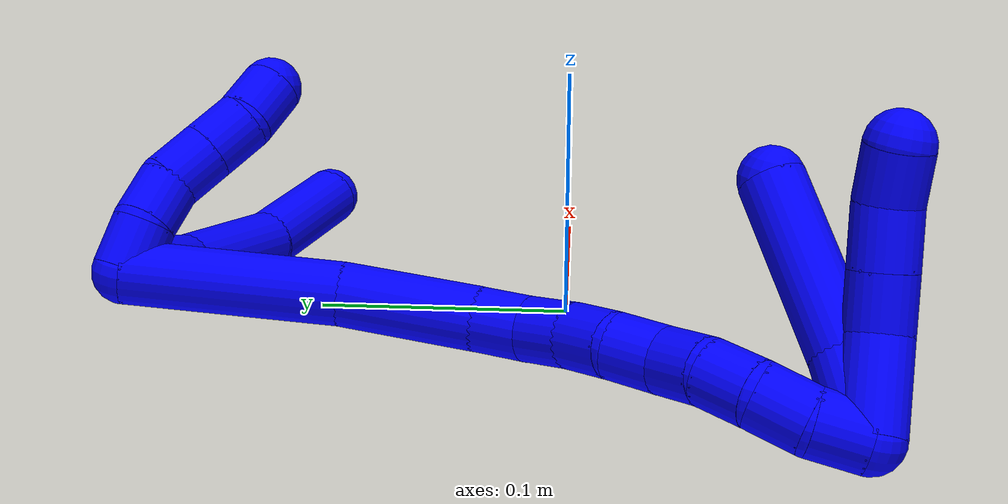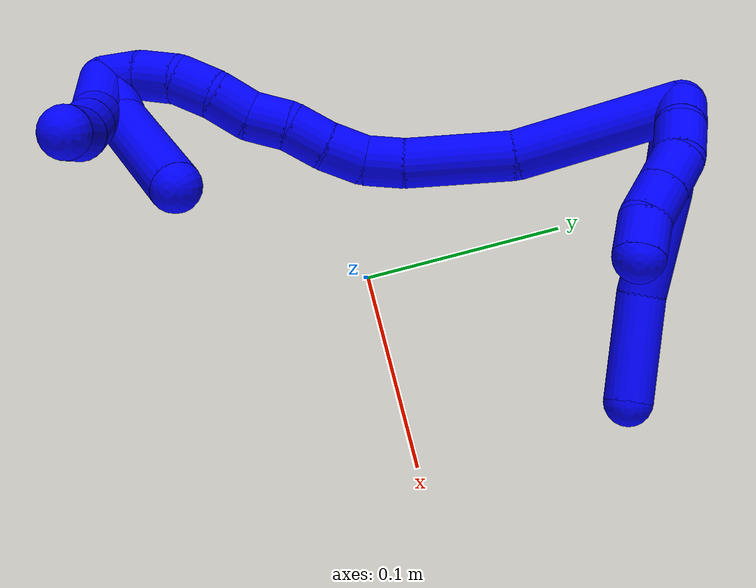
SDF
<sdf version="1.7">
 <world name="default">
  <model name="photoneo_s_sensor">
   <static>1</static>
   <pose>0 0 2 1.57079 1.57079 3.14159</pose>
   <link name="link">
    <inertial><mass>0.1</mass></inertial>
    <sensor name="sensor" type="depth">
     <update_rate>30</update_rate>
     <camera>
      <horizontal_fov>1.22</horizontal_fov>
      <image><width>1920</width><height>1200</height><format>B8G8R8</format></image>
      <clip><near>0.1</near><far>4</far></clip>
      <depth_camera><output>points</output></depth_camera>
     </camera>
     <plugin name="camera_plugin" filename="libgazebo_ros_depth_camera.so">
      <baseline>0.2</baseline>
      <alwaysOn>1</alwaysOn>
      <updateRate>0.0</updateRate>
      <cameraName>camera_ir</cameraName>
      <imageTopicName>/camera/color/image_raw</imageTopicName>
      <cameraInfoTopicName>/camera/color/camera_info</cameraInfoTopicName>
      <depthImageTopicName>/camera/depth/image_raw</depthImageTopicName>
      <depthImageCameraInfoTopicName>/camera/depth/camera_info</depthImageCameraInfoTopicName>
      <pointCloudTopicName>/camera/depth/points</pointCloudTopicName>
      <frameName>fr_optical</frameName>
      <pointCloudCutoff>0.1</pointCloudCutoff>
      <pointCloudCutoffMax>2.0</pointCloudCutoffMax>
      <distortionK1>0</distortionK1>
      <distortionK2>0</distortionK2>
      <distortionK3>0</distortionK3>
      <distortionT1>0</distortionT1>
      <distortionT2>0</distortionT2>
      <CxPrime>0</CxPrime>
      <Cx>0</Cx>
      <Cy>0</Cy>
      <focalLength>0</focalLength>
      <hackBaseline>0</hackBaseline>
     </plugin>
    </sensor>
   </link>
  </model>
  <model name="bin">
   <static>1</static>
   <link name="bottom">
    <collision name="collision-bottom">
     <pose>0 0 -0.01 0 -0 0</pose>
     <geometry><box><size>0.8 0.6 0.02</size></box></geometry>
     <surface>
      <friction><ode><mu>100</mu><mu2>100</mu2></ode></friction>
      <contact><collide_bitmask>65535</collide_bitmask></contact>
     </surface>
    </collision>
   </link>
   <link name="west_wall">
    <collision name="collision-west_wall">
     <pose>-0.41 0 0.1 0 -0 0</pose>
     <geometry><box><size>0.02 0.6 0.2</size></box></geometry>
     <surface>
      <friction><ode><mu>100</mu><mu2>100</mu2></ode></friction>
      <contact><collide_bitmask>65535</collide_bitmask></contact>
     </surface>
    </collision>
   </link>
   <link name="east_wall">
    <collision name="collision-east_wall">
     <pose>0.41 0 0.1 0 -0 0</pose>
     <geometry><box><size>0.02 0.6 0.2</size></box></geometry>
     <surface>
      <friction><ode><mu>100</mu><mu2>100</mu2></ode></friction>
      <contact><collide_bitmask>65535</collide_bitmask></contact>
     </surface>
    </collision>
   </link>
   <link name="south_wall">
    <collision name="collision-south_wall">
     <pose>0 -0.31 0.1 0 -0 0</pose>
     <geometry><box><size>0.8 0.02 0.2</size></box></geometry>
     <surface>
      <friction><ode><mu>100</mu><mu2>100</mu2></ode></friction>
      <contact><collide_bitmask>65535</collide_bitmask></contact>
     </surface>
    </collision>
   </link>
   <link name="north_wall">
    <collision name="collision-north_wall">
     <pose>0 0.31 0.1 0 -0 0</pose>
     <geometry><box><size>0.8 0.02 0.2</size></box></geometry>
     <surface>
      <friction><ode><mu>100</mu><mu2>100</mu2></ode></friction>
      <contact><collide_bitmask>65535</collide_bitmask></contact>
     </surface>
    </collision>
   </link>
  </model>
  <model name="1">
   <static>0</static>
   <link name="1">
    <collision name="collision-cylinder-e_1_2_8">
     <pose>0.019241 -0.009575 -0.001714 1.74798 1.10273 1.26752</pose>
     <geometry><cylinder><radius>0.0125</radius><length>0.043119</length></cylinder></geometry>
     <surface>
      <friction><ode><mu>1.16</mu><mu2>1.16</mu2><slip1>0</slip1><slip2>0</slip2></ode></friction>
      <contact><ode><kp>1e+06</kp><kd>1</kd><max_vel>0</max_vel><min_depth>0.001</min_depth></ode></contact>
     </surface>
    </collision>
    <visual name="visual-cylinder-e_1_2_8">
     <pose>0.019241 -0.009575 -0.001714 1.74798 1.10273 1.26752</pose>
     <geometry><cylinder><radius>0.0125</radius><length>0.043119</length></cylinder></geometry>
     <material><ambient>0 0 1 1</ambient></material>
    </visual>
    <collision name="collision-cylinder-e_2_8_9">
     <pose>0.060971 -0.03308 -0.000796 1.38398 1.00832 0.857646</pose>
     <geometry><cylinder><radius>0.0125</radius><length>0.053171</length></cylinder></geometry>
     <surface>
      <friction><ode><mu>1.16</mu><mu2>1.16</mu2><slip1>0</slip1><slip2>0</slip2></ode></friction>
      <contact><ode><kp>1e+06</kp><kd>1</kd><max_vel>0</max_vel><min_depth>0.001</min_depth></ode></contact>
     </surface>
    </collision>
    <visual name="visual-cylinder-e_2_8_9">
     <pose>0.060971 -0.03308 -0.000796 1.38398 1.00832 0.857646</pose>
     <geometry><cylinder><radius>0.0125</radius><length>0.053171</length></cylinder></geometry>
     <material><ambient>0 0 1 1</ambient></material>
    </visual>
    <collision name="collision-cylinder-e_3_9_6">
     <pose>0.106836 -0.058085 0.009056 0.993151 1.05613 0.612287</pose>
     <geometry><cylinder><radius>0.0125</radius><length>0.05371</length></cylinder></geometry>
     <surface>
      <friction><ode><mu>1.16</mu><mu2>1.16</mu2><slip1>0</slip1><slip2>0</slip2></ode></friction>
      <contact><ode><kp>1e+06</kp><kd>1</kd><max_vel>0</max_vel><min_depth>0.001</min_depth></ode></contact>
     </surface>
    </collision>
    <visual name="visual-cylinder-e_3_9_6">
     <pose>0.106836 -0.058085 0.009056 0.993151 1.05613 0.612287</pose>
     <geometry><cylinder><radius>0.0125</radius><length>0.05371</length></cylinder></geometry>
     <material><ambient>0 0 1 1</ambient></material>
    </visual>
    <collision name="collision-cylinder-e_1_2_10">
     <pose>0.003922 -0.001771 0.009026 0.193752 0.403073 0.039704</pose>
     <geometry><cylinder><radius>0.0125</radius><length>0.02</length></cylinder></geometry>
     <surface>
      <friction><ode><mu>1.16</mu><mu2>1.16</mu2><slip1>0</slip1><slip2>0</slip2></ode></friction>
      <contact><ode><kp>1e+06</kp><kd>1</kd><max_vel>0</max_vel><min_depth>0.001</min_depth></ode></contact>
     </surface>
    </collision>
    <visual name="visual-cylinder-e_1_2_10">
     <pose>0.003922 -0.001771 0.009026 0.193752 0.403073 0.039704</pose>
     <geometry><cylinder><radius>0.0125</radius><length>0.02</length></cylinder></geometry>
     <material><ambient>0 0 1 1</ambient></material>
    </visual>
    <collision name="collision-cylinder-e_2_10_11">
     <pose>0.013864 -0.006253 0.025565 0.34631 0.64585 0.116927</pose>
     <geometry><cylinder><radius>0.0125</radius><length>0.02</length></cylinder></geometry>
     <surface>
      <friction><ode><mu>1.16</mu><mu2>1.16</mu2><slip1>0</slip1><slip2>0</slip2></ode></friction>
      <contact><ode><kp>1e+06</kp><kd>1</kd><max_vel>0</max_vel><min_depth>0.001</min_depth></ode></contact>
     </surface>
    </collision>
    <visual name="visual-cylinder-e_2_10_11">
     <pose>0.013864 -0.006253 0.025565 0.34631 0.64585 0.116927</pose>
     <geometry><cylinder><radius>0.0125</radius><length>0.02</length></cylinder></geometry>
     <material><ambient>0 0 1 1</ambient></material>
    </visual>
    <collision name="collision-cylinder-e_3_11_12">
     <pose>0.024659 -0.014739 0.039697 0.717335 0.497993 0.190071</pose>
     <geometry><cylinder><radius>0.0125</radius><length>0.02</length></cylinder></geometry>
     <surface>
      <friction><ode><mu>1.16</mu><mu2>1.16</mu2><slip1>0</slip1><slip2>0</slip2></ode></friction>
      <contact><ode><kp>1e+06</kp><kd>1</kd><max_vel>0</max_vel><min_depth>0.001</min_depth></ode></contact>
     </surface>
    </collision>
    <visual name="visual-cylinder-e_3_11_12">
     <pose>0.024659 -0.014739 0.039697 0.717335 0.497993 0.190071</pose>
     <geometry><cylinder><radius>0.0125</radius><length>0.02</length></cylinder></geometry>
     <material><ambient>0 0 1 1</ambient></material>
    </visual>
    <collision name="collision-cylinder-e_4_12_13">
     <pose>0.034115 -0.026331 0.052971 0.718393 0.486893 0.185983</pose>
     <geometry><cylinder><radius>0.0125</radius><length>0.02</length></cylinder></geometry>
     <surface>
      <friction><ode><mu>1.16</mu><mu2>1.16</mu2><slip1>0</slip1><slip2>0</slip2></ode></friction>
      <contact><ode><kp>1e+06</kp><kd>1</kd><max_vel>0</max_vel><min_depth>0.001</min_depth></ode></contact>
     </surface>
    </collision>
    <visual name="visual-cylinder-e_4_12_13">
     <pose>0.034115 -0.026331 0.052971 0.718393 0.486893 0.185983</pose>
     <geometry><cylinder><radius>0.0125</radius><length>0.02</length></cylinder></geometry>
     <material><ambient>0 0 1 1</ambient></material>
    </visual>
    <collision name="collision-cylinder-e_5_13_5">
     <pose>0.045497 -0.035807 0.06608 0.515722 0.734701 0.202285</pose>
     <geometry><cylinder><radius>0.0125</radius><length>0.02</length></cylinder></geometry>
     <surface>
      <friction><ode><mu>1.16</mu><mu2>1.16</mu2><slip1>0</slip1><slip2>0</slip2></ode></friction>
      <contact><ode><kp>1e+06</kp><kd>1</kd><max_vel>0</max_vel><min_depth>0.001</min_depth></ode></contact>
     </surface>
    </collision>
    <visual name="visual-cylinder-e_5_13_5">
     <pose>0.045497 -0.035807 0.06608 0.515722 0.734701 0.202285</pose>
     <geometry><cylinder><radius>0.0125</radius><length>0.02</length></cylinder></geometry>
     <material><ambient>0 0 1 1</ambient></material>
    </visual>
    <collision name="collision-cylinder-e_1_2_14">
     <pose>-0.00182 -0.041777 0.004111 1.47271 -0.043326 -0.039273</pose>
     <geometry><cylinder><radius>0.0125</radius><length>0.084037</length></cylinder></geometry>
     <surface>
      <friction><ode><mu>1.16</mu><mu2>1.16</mu2><slip1>0</slip1><slip2>0</slip2></ode></friction>
      <contact><ode><kp>1e+06</kp><kd>1</kd><max_vel>0</max_vel><min_depth>0.001</min_depth></ode></contact>
     </surface>
    </collision>
    <visual name="visual-cylinder-e_1_2_14">
     <pose>-0.00182 -0.041777 0.004111 1.47271 -0.043326 -0.039273</pose>
     <geometry><cylinder><radius>0.0125</radius><length>0.084037</length></cylinder></geometry>
     <material><ambient>0 0 1 1</ambient></material>
    </visual>
    <collision name="collision-cylinder-e_2_14_15">
     <pose>-0.010794 -0.109775 0.010285 1.49229 -0.265577 -0.245713</pose>
     <geometry><cylinder><radius>0.0125</radius><length>0.054513</length></cylinder></geometry>
     <surface>
      <friction><ode><mu>1.16</mu><mu2>1.16</mu2><slip1>0</slip1><slip2>0</slip2></ode></friction>
      <contact><ode><kp>1e+06</kp><kd>1</kd><max_vel>0</max_vel><min_depth>0.001</min_depth></ode></contact>
     </surface>
    </collision>
    <visual name="visual-cylinder-e_2_14_15">
     <pose>-0.010794 -0.109775 0.010285 1.49229 -0.265577 -0.245713</pose>
     <geometry><cylinder><radius>0.0125</radius><length>0.054513</length></cylinder></geometry>
     <material><ambient>0 0 1 1</ambient></material>
    </visual>
    <collision name="collision-cylinder-e_3_15_16">
     <pose>-0.021976 -0.145201 0.013353 1.46195 -0.410308 -0.36892</pose>
     <geometry><cylinder><radius>0.0125</radius><length>0.020198</length></cylinder></geometry>
     <surface>
      <friction><ode><mu>1.16</mu><mu2>1.16</mu2><slip1>0</slip1><slip2>0</slip2></ode></friction>
      <contact><ode><kp>1e+06</kp><kd>1</kd><max_vel>0</max_vel><min_depth>0.001</min_depth></ode></contact>
     </surface>
    </collision>
    <visual name="visual-cylinder-e_3_15_16">
     <pose>-0.021976 -0.145201 0.013353 1.46195 -0.410308 -0.36892</pose>
     <geometry><cylinder><radius>0.0125</radius><length>0.020198</length></cylinder></geometry>
     <material><ambient>0 0 1 1</ambient></material>
    </visual>
    <collision name="collision-cylinder-e_4_16_17">
     <pose>-0.032662 -0.161981 0.016485 1.29724 -0.702296 -0.541726</pose>
     <geometry><cylinder><radius>0.0125</radius><length>0.020612</length></cylinder></geometry>
     <surface>
      <friction><ode><mu>1.16</mu><mu2>1.16</mu2><slip1>0</slip1><slip2>0</slip2></ode></friction>
      <contact><ode><kp>1e+06</kp><kd>1</kd><max_vel>0</max_vel><min_depth>0.001</min_depth></ode></contact>
     </surface>
    </collision>
    <visual name="visual-cylinder-e_4_16_17">
     <pose>-0.032662 -0.161981 0.016485 1.29724 -0.702296 -0.541726</pose>
     <geometry><cylinder><radius>0.0125</radius><length>0.020612</length></cylinder></geometry>
     <material><ambient>0 0 1 1</ambient></material>
    </visual>
    <collision name="collision-cylinder-e_5_17_18">
     <pose>-0.046911 -0.176102 0.020276 1.3216 -0.843656 -0.671326</pose>
     <geometry><cylinder><radius>0.0125</radius><length>0.020323</length></cylinder></geometry>
     <surface>
      <friction><ode><mu>1.16</mu><mu2>1.16</mu2><slip1>0</slip1><slip2>0</slip2></ode></friction>
      <contact><ode><kp>1e+06</kp><kd>1</kd><max_vel>0</max_vel><min_depth>0.001</min_depth></ode></contact>
     </surface>
    </collision>
    <visual name="visual-cylinder-e_5_17_18">
     <pose>-0.046911 -0.176102 0.020276 1.3216 -0.843656 -0.671326</pose>
     <geometry><cylinder><radius>0.0125</radius><length>0.020323</length></cylinder></geometry>
     <material><ambient>0 0 1 1</ambient></material>
    </visual>
    <collision name="collision-cylinder-e_6_18_19">
     <pose>-0.060051 -0.191028 0.0225 1.50429 -0.583827 -0.548151</pose>
     <geometry><cylinder><radius>0.0125</radius><length>0.020131</length></cylinder></geometry>
     <surface>
      <friction><ode><mu>1.16</mu><mu2>1.16</mu2><slip1>0</slip1><slip2>0</slip2></ode></friction>
      <contact><ode><kp>1e+06</kp><kd>1</kd><max_vel>0</max_vel><min_depth>0.001</min_depth></ode></contact>
     </surface>
    </collision>
    <visual name="visual-cylinder-e_6_18_19">
     <pose>-0.060051 -0.191028 0.0225 1.50429 -0.583827 -0.548151</pose>
     <geometry><cylinder><radius>0.0125</radius><length>0.020131</length></cylinder></geometry>
     <material><ambient>0 0 1 1</ambient></material>
    </visual>
    <collision name="collision-cylinder-e_7_19_20">
     <pose>-0.073411 -0.20558 0.024631 1.32134 -0.886756 -0.707164</pose>
     <geometry><cylinder><radius>0.0125</radius><length>0.020158</length></cylinder></geometry>
     <surface>
      <friction><ode><mu>1.16</mu><mu2>1.16</mu2><slip1>0</slip1><slip2>0</slip2></ode></friction>
      <contact><ode><kp>1e+06</kp><kd>1</kd><max_vel>0</max_vel><min_depth>0.001</min_depth></ode></contact>
     </surface>
    </collision>
    <visual name="visual-cylinder-e_7_19_20">
     <pose>-0.073411 -0.20558 0.024631 1.32134 -0.886756 -0.707164</pose>
     <geometry><cylinder><radius>0.0125</radius><length>0.020158</length></cylinder></geometry>
     <material><ambient>0 0 1 1</ambient></material>
    </visual>
    <collision name="collision-cylinder-e_8_20_21">
     <pose>-0.08783 -0.219256 0.02581 1.62322 -0.721241 -0.756557</pose>
     <geometry><cylinder><radius>0.0125</radius><length>0.020013</length></cylinder></geometry>
     <surface>
      <friction><ode><mu>1.16</mu><mu2>1.16</mu2><slip1>0</slip1><slip2>0</slip2></ode></friction>
      <contact><ode><kp>1e+06</kp><kd>1</kd><max_vel>0</max_vel><min_depth>0.001</min_depth></ode></contact>
     </surface>
    </collision>
    <visual name="visual-cylinder-e_8_20_21">
     <pose>-0.08783 -0.219256 0.02581 1.62322 -0.721241 -0.756557</pose>
     <geometry><cylinder><radius>0.0125</radius><length>0.020013</length></cylinder></geometry>
     <material><ambient>0 0 1 1</ambient></material>
    </visual>
    <collision name="collision-cylinder-e_9_21_22">
     <pose>-0.098524 -0.235736 0.02372 1.7575 -0.420735 -0.504311</pose>
     <geometry><cylinder><radius>0.0125</radius><length>0.020014</length></cylinder></geometry>
     <surface>
      <friction><ode><mu>1.16</mu><mu2>1.16</mu2><slip1>0</slip1><slip2>0</slip2></ode></friction>
      <contact><ode><kp>1e+06</kp><kd>1</kd><max_vel>0</max_vel><min_depth>0.001</min_depth></ode></contact>
     </surface>
    </collision>
    <visual name="visual-cylinder-e_9_21_22">
     <pose>-0.098524 -0.235736 0.02372 1.7575 -0.420735 -0.504311</pose>
     <geometry><cylinder><radius>0.0125</radius><length>0.020014</length></cylinder></geometry>
     <material><ambient>0 0 1 1</ambient></material>
    </visual>
    <collision name="collision-cylinder-e_10_22_1">
     <pose>-0.104527 -0.254511 0.02147 1.62739 -0.192713 -0.203865</pose>
     <geometry><cylinder><radius>0.0125</radius><length>0.020001</length></cylinder></geometry>
     <surface>
      <friction><ode><mu>1.16</mu><mu2>1.16</mu2><slip1>0</slip1><slip2>0</slip2></ode></friction>
      <contact><ode><kp>1e+06</kp><kd>1</kd><max_vel>0</max_vel><min_depth>0.001</min_depth></ode></contact>
     </surface>
    </collision>
    <visual name="visual-cylinder-e_10_22_1">
     <pose>-0.104527 -0.254511 0.02147 1.62739 -0.192713 -0.203865</pose>
     <geometry><cylinder><radius>0.0125</radius><length>0.020001</length></cylinder></geometry>
     <material><ambient>0 0 1 1</ambient></material>
    </visual>
    <collision name="collision-cylinder-e_1_1_23">
     <pose>-0.098376 -0.263774 0.036585 -0.034197 0.475138 -0.008281</pose>
     <geometry><cylinder><radius>0.0125</radius><length>0.035266</length></cylinder></geometry>
     <surface>
      <friction><ode><mu>1.16</mu><mu2>1.16</mu2><slip1>0</slip1><slip2>0</slip2></ode></friction>
      <contact><ode><kp>1e+06</kp><kd>1</kd><max_vel>0</max_vel><min_depth>0.001</min_depth></ode></contact>
     </surface>
    </collision>
    <visual name="visual-cylinder-e_1_1_23">
     <pose>-0.098376 -0.263774 0.036585 -0.034197 0.475138 -0.008281</pose>
     <geometry><cylinder><radius>0.0125</radius><length>0.035266</length></cylinder></geometry>
     <material><ambient>0 0 1 1</ambient></material>
    </visual>
    <collision name="collision-cylinder-e_2_23_24">
     <pose>-0.088549 -0.261822 0.062863 -0.132751 0.163012 -0.01086</pose>
     <geometry><cylinder><radius>0.0125</radius><length>0.021692</length></cylinder></geometry>
     <surface>
      <friction><ode><mu>1.16</mu><mu2>1.16</mu2><slip1>0</slip1><slip2>0</slip2></ode></friction>
      <contact><ode><kp>1e+06</kp><kd>1</kd><max_vel>0</max_vel><min_depth>0.001</min_depth></ode></contact>
     </surface>
    </collision>
    <visual name="visual-cylinder-e_2_23_24">
     <pose>-0.088549 -0.261822 0.062863 -0.132751 0.163012 -0.01086</pose>
     <geometry><cylinder><radius>0.0125</radius><length>0.021692</length></cylinder></geometry>
     <material><ambient>0 0 1 1</ambient></material>
    </visual>
    <collision name="collision-cylinder-e_3_24_25">
     <pose>-0.084926 -0.258869 0.084627 -0.136833 0.163977 -0.011261</pose>
     <geometry><cylinder><radius>0.0125</radius><length>0.022829</length></cylinder></geometry>
     <surface>
      <friction><ode><mu>1.16</mu><mu2>1.16</mu2><slip1>0</slip1><slip2>0</slip2></ode></friction>
      <contact><ode><kp>1e+06</kp><kd>1</kd><max_vel>0</max_vel><min_depth>0.001</min_depth></ode></contact>
     </surface>
    </collision>
    <visual name="visual-cylinder-e_3_24_25">
     <pose>-0.084926 -0.258869 0.084627 -0.136833 0.163977 -0.011261</pose>
     <geometry><cylinder><radius>0.0125</radius><length>0.022829</length></cylinder></geometry>
     <material><ambient>0 0 1 1</ambient></material>
    </visual>
    <collision name="collision-cylinder-e_4_25_4">
     <pose>-0.084117 -0.256418 0.105793 -0.091153 -0.104523 0.004771</pose>
     <geometry><cylinder><radius>0.0125</radius><length>0.020214</length></cylinder></geometry>
     <surface>
      <friction><ode><mu>1.16</mu><mu2>1.16</mu2><slip1>0</slip1><slip2>0</slip2></ode></friction>
      <contact><ode><kp>1e+06</kp><kd>1</kd><max_vel>0</max_vel><min_depth>0.001</min_depth></ode></contact>
     </surface>
    </collision>
    <visual name="visual-cylinder-e_4_25_4">
     <pose>-0.084117 -0.256418 0.105793 -0.091153 -0.104523 0.004771</pose>
     <geometry><cylinder><radius>0.0125</radius><length>0.020214</length></cylinder></geometry>
     <material><ambient>0 0 1 1</ambient></material>
    </visual>
    <collision name="collision-cylinder-e_1_1_26">
     <pose>-0.095183 -0.259811 0.031297 -0.408898 0.782904 -0.170749</pose>
     <geometry><cylinder><radius>0.0125</radius><length>0.031925</length></cylinder></geometry>
     <surface>
      <friction><ode><mu>1.16</mu><mu2>1.16</mu2><slip1>0</slip1><slip2>0</slip2></ode></friction>
      <contact><ode><kp>1e+06</kp><kd>1</kd><max_vel>0</max_vel><min_depth>0.001</min_depth></ode></contact>
     </surface>
    </collision>
    <visual name="visual-cylinder-e_1_1_26">
     <pose>-0.095183 -0.259811 0.031297 -0.408898 0.782904 -0.170749</pose>
     <geometry><cylinder><radius>0.0125</radius><length>0.031925</length></cylinder></geometry>
     <material><ambient>0 0 1 1</ambient></material>
    </visual>
    <collision name="collision-cylinder-e_2_26_3">
     <pose>-0.065273 -0.240492 0.065991 -0.547447 0.579909 -0.167153</pose>
     <geometry><cylinder><radius>0.0125</radius><length>0.068075</length></cylinder></geometry>
     <surface>
      <friction><ode><mu>1.16</mu><mu2>1.16</mu2><slip1>0</slip1><slip2>0</slip2></ode></friction>
      <contact><ode><kp>1e+06</kp><kd>1</kd><max_vel>0</max_vel><min_depth>0.001</min_depth></ode></contact>
     </surface>
    </collision>
    <visual name="visual-cylinder-e_2_26_3">
     <pose>-0.065273 -0.240492 0.065991 -0.547447 0.579909 -0.167153</pose>
     <geometry><cylinder><radius>0.0125</radius><length>0.068075</length></cylinder></geometry>
     <material><ambient>0 0 1 1</ambient></material>
    </visual>
    <collision name="collision-sphere-3">
     <pose>-0.046622 -0.225672 0.090303 0 -0 0</pose>
     <geometry><sphere><radius>0.0125</radius></sphere></geometry>
     <surface>
      <friction><ode><mu>1.16</mu><mu2>1.16</mu2><slip1>0</slip1><slip2>0</slip2></ode></friction>
      <contact><ode><kp>1e+06</kp><kd>1</kd><max_vel>0</max_vel><min_depth>0.001</min_depth></ode></contact>
     </surface>
    </collision>
    <visual name="visual-sphere-3">
     <pose>-0.046622 -0.225672 0.090303 0 -0 0</pose>
     <geometry><sphere><radius>0.0125</radius></sphere></geometry>
     <material><ambient>0 0 1 1</ambient></material>
    </visual>
    <collision name="collision-sphere-26">
     <pose>-0.083924 -0.255312 0.04168 0 -0 0</pose>
     <geometry><sphere><radius>0.0125</radius></sphere></geometry>
     <surface>
      <friction><ode><mu>1.16</mu><mu2>1.16</mu2><slip1>0</slip1><slip2>0</slip2></ode></friction>
      <contact><ode><kp>1e+06</kp><kd>1</kd><max_vel>0</max_vel><min_depth>0.001</min_depth></ode></contact>
     </surface>
    </collision>
    <visual name="visual-sphere-26">
     <pose>-0.083924 -0.255312 0.04168 0 -0 0</pose>
     <geometry><sphere><radius>0.0125</radius></sphere></geometry>
     <material><ambient>0 0 1 1</ambient></material>
    </visual>
    <collision name="collision-sphere-4">
     <pose>-0.085171 -0.255503 0.115803 0 -0 0</pose>
     <geometry><sphere><radius>0.0125</radius></sphere></geometry>
     <surface>
      <friction><ode><mu>1.16</mu><mu2>1.16</mu2><slip1>0</slip1><slip2>0</slip2></ode></friction>
      <contact><ode><kp>1e+06</kp><kd>1</kd><max_vel>0</max_vel><min_depth>0.001</min_depth></ode></contact>
     </surface>
    </collision>
    <visual name="visual-sphere-4">
     <pose>-0.085171 -0.255503 0.115803 0 -0 0</pose>
     <geometry><sphere><radius>0.0125</radius></sphere></geometry>
     <material><ambient>0 0 1 1</ambient></material>
    </visual>
    <collision name="collision-sphere-25">
     <pose>-0.083062 -0.257333 0.095783 0 -0 0</pose>
     <geometry><sphere><radius>0.0125</radius></sphere></geometry>
     <surface>
      <friction><ode><mu>1.16</mu><mu2>1.16</mu2><slip1>0</slip1><slip2>0</slip2></ode></friction>
      <contact><ode><kp>1e+06</kp><kd>1</kd><max_vel>0</max_vel><min_depth>0.001</min_depth></ode></contact>
     </surface>
    </collision>
    <visual name="visual-sphere-25">
     <pose>-0.083062 -0.257333 0.095783 0 -0 0</pose>
     <geometry><sphere><radius>0.0125</radius></sphere></geometry>
     <material><ambient>0 0 1 1</ambient></material>
    </visual>
    <collision name="collision-sphere-24">
     <pose>-0.086789 -0.260405 0.073471 0 -0 0</pose>
     <geometry><sphere><radius>0.0125</radius></sphere></geometry>
     <surface>
      <friction><ode><mu>1.16</mu><mu2>1.16</mu2><slip1>0</slip1><slip2>0</slip2></ode></friction>
      <contact><ode><kp>1e+06</kp><kd>1</kd><max_vel>0</max_vel><min_depth>0.001</min_depth></ode></contact>
     </surface>
    </collision>
    <visual name="visual-sphere-24">
     <pose>-0.086789 -0.260405 0.073471 0 -0 0</pose>
     <geometry><sphere><radius>0.0125</radius></sphere></geometry>
     <material><ambient>0 0 1 1</ambient></material>
    </visual>
    <collision name="collision-sphere-23">
     <pose>-0.090309 -0.263238 0.052255 0 -0 0</pose>
     <geometry><sphere><radius>0.0125</radius></sphere></geometry>
     <surface>
      <friction><ode><mu>1.16</mu><mu2>1.16</mu2><slip1>0</slip1><slip2>0</slip2></ode></friction>
      <contact><ode><kp>1e+06</kp><kd>1</kd><max_vel>0</max_vel><min_depth>0.001</min_depth></ode></contact>
     </surface>
    </collision>
    <visual name="visual-sphere-23">
     <pose>-0.090309 -0.263238 0.052255 0 -0 0</pose>
     <geometry><sphere><radius>0.0125</radius></sphere></geometry>
     <material><ambient>0 0 1 1</ambient></material>
    </visual>
    <collision name="collision-sphere-1">
     <pose>-0.106442 -0.26431 0.020914 0 -0 0</pose>
     <geometry><sphere><radius>0.0125</radius></sphere></geometry>
     <surface>
      <friction><ode><mu>1.16</mu><mu2>1.16</mu2><slip1>0</slip1><slip2>0</slip2></ode></friction>
      <contact><ode><kp>1e+06</kp><kd>1</kd><max_vel>0</max_vel><min_depth>0.001</min_depth></ode></contact>
     </surface>
    </collision>
    <visual name="visual-sphere-1">
     <pose>-0.106442 -0.26431 0.020914 0 -0 0</pose>
     <geometry><sphere><radius>0.0125</radius></sphere></geometry>
     <material><ambient>0 0 1 1</ambient></material>
    </visual>
    <collision name="collision-sphere-22">
     <pose>-0.102611 -0.244711 0.022025 0 -0 0</pose>
     <geometry><sphere><radius>0.0125</radius></sphere></geometry>
     <surface>
      <friction><ode><mu>1.16</mu><mu2>1.16</mu2><slip1>0</slip1><slip2>0</slip2></ode></friction>
      <contact><ode><kp>1e+06</kp><kd>1</kd><max_vel>0</max_vel><min_depth>0.001</min_depth></ode></contact>
     </surface>
    </collision>
    <visual name="visual-sphere-22">
     <pose>-0.102611 -0.244711 0.022025 0 -0 0</pose>
     <geometry><sphere><radius>0.0125</radius></sphere></geometry>
     <material><ambient>0 0 1 1</ambient></material>
    </visual>
    <collision name="collision-sphere-21">
     <pose>-0.094437 -0.226761 0.025416 0 -0 0</pose>
     <geometry><sphere><radius>0.0125</radius></sphere></geometry>
     <surface>
      <friction><ode><mu>1.16</mu><mu2>1.16</mu2><slip1>0</slip1><slip2>0</slip2></ode></friction>
      <contact><ode><kp>1e+06</kp><kd>1</kd><max_vel>0</max_vel><min_depth>0.001</min_depth></ode></contact>
     </surface>
    </collision>
    <visual name="visual-sphere-21">
     <pose>-0.094437 -0.226761 0.025416 0 -0 0</pose>
     <geometry><sphere><radius>0.0125</radius></sphere></geometry>
     <material><ambient>0 0 1 1</ambient></material>
    </visual>
    <collision name="collision-sphere-11">
     <pose>0.019882 -0.008964 0.033077 0 -0 0</pose>
     <geometry><sphere><radius>0.0125</radius></sphere></geometry>
     <surface>
      <friction><ode><mu>1.16</mu><mu2>1.16</mu2><slip1>0</slip1><slip2>0</slip2></ode></friction>
      <contact><ode><kp>1e+06</kp><kd>1</kd><max_vel>0</max_vel><min_depth>0.001</min_depth></ode></contact>
     </surface>
    </collision>
    <visual name="visual-sphere-11">
     <pose>0.019882 -0.008964 0.033077 0 -0 0</pose>
     <geometry><sphere><radius>0.0125</radius></sphere></geometry>
     <material><ambient>0 0 1 1</ambient></material>
    </visual>
    <collision name="collision-sphere-10">
     <pose>0.007845 -0.003542 0.018053 0 -0 0</pose>
     <geometry><sphere><radius>0.0125</radius></sphere></geometry>
     <surface>
      <friction><ode><mu>1.16</mu><mu2>1.16</mu2><slip1>0</slip1><slip2>0</slip2></ode></friction>
      <contact><ode><kp>1e+06</kp><kd>1</kd><max_vel>0</max_vel><min_depth>0.001</min_depth></ode></contact>
     </surface>
    </collision>
    <visual name="visual-sphere-10">
     <pose>0.007845 -0.003542 0.018053 0 -0 0</pose>
     <geometry><sphere><radius>0.0125</radius></sphere></geometry>
     <material><ambient>0 0 1 1</ambient></material>
    </visual>
    <collision name="collision-sphere-6">
     <pose>0.130213 -0.06916 0.016274 0 -0 0</pose>
     <geometry><sphere><radius>0.0125</radius></sphere></geometry>
     <surface>
      <friction><ode><mu>1.16</mu><mu2>1.16</mu2><slip1>0</slip1><slip2>0</slip2></ode></friction>
      <contact><ode><kp>1e+06</kp><kd>1</kd><max_vel>0</max_vel><min_depth>0.001</min_depth></ode></contact>
     </surface>
    </collision>
    <visual name="visual-sphere-6">
     <pose>0.130213 -0.06916 0.016274 0 -0 0</pose>
     <geometry><sphere><radius>0.0125</radius></sphere></geometry>
     <material><ambient>0 0 1 1</ambient></material>
    </visual>
    <collision name="collision-sphere-9">
     <pose>0.08346 -0.047011 0.001838 0 -0 0</pose>
     <geometry><sphere><radius>0.0125</radius></sphere></geometry>
     <surface>
      <friction><ode><mu>1.16</mu><mu2>1.16</mu2><slip1>0</slip1><slip2>0</slip2></ode></friction>
      <contact><ode><kp>1e+06</kp><kd>1</kd><max_vel>0</max_vel><min_depth>0.001</min_depth></ode></contact>
     </surface>
    </collision>
    <visual name="visual-sphere-9">
     <pose>0.08346 -0.047011 0.001838 0 -0 0</pose>
     <geometry><sphere><radius>0.0125</radius></sphere></geometry>
     <material><ambient>0 0 1 1</ambient></material>
    </visual>
    <collision name="collision-sphere-2">
     <geometry><sphere><radius>0.0125</radius></sphere></geometry>
     <surface>
      <friction><ode><mu>1.16</mu><mu2>1.16</mu2><slip1>0</slip1><slip2>0</slip2></ode></friction>
      <contact><ode><kp>1e+06</kp><kd>1</kd><max_vel>0</max_vel><min_depth>0.001</min_depth></ode></contact>
     </surface>
    </collision>
    <visual name="visual-sphere-2">
     <geometry><sphere><radius>0.0125</radius></sphere></geometry>
     <material><ambient>0 0 1 1</ambient></material>
    </visual>
    <collision name="collision-sphere-19">
     <pose>-0.065599 -0.199408 0.023058 0 -0 0</pose>
     <geometry><sphere><radius>0.0125</radius></sphere></geometry>
     <surface>
      <friction><ode><mu>1.16</mu><mu2>1.16</mu2><slip1>0</slip1><slip2>0</slip2></ode></friction>
      <contact><ode><kp>1e+06</kp><kd>1</kd><max_vel>0</max_vel><min_depth>0.001</min_depth></ode></contact>
     </surface>
    </collision>
    <visual name="visual-sphere-19">
     <pose>-0.065599 -0.199408 0.023058 0 -0 0</pose>
     <geometry><sphere><radius>0.0125</radius></sphere></geometry>
     <material><ambient>0 0 1 1</ambient></material>
    </visual>
    <collision name="collision-sphere-8">
     <pose>0.038481 -0.019149 -0.003429 0 -0 0</pose>
     <geometry><sphere><radius>0.0125</radius></sphere></geometry>
     <surface>
      <friction><ode><mu>1.16</mu><mu2>1.16</mu2><slip1>0</slip1><slip2>0</slip2></ode></friction>
      <contact><ode><kp>1e+06</kp><kd>1</kd><max_vel>0</max_vel><min_depth>0.001</min_depth></ode></contact>
     </surface>
    </collision>
    <visual name="visual-sphere-8">
     <pose>0.038481 -0.019149 -0.003429 0 -0 0</pose>
     <geometry><sphere><radius>0.0125</radius></sphere></geometry>
     <material><ambient>0 0 1 1</ambient></material>
    </visual>
    <collision name="collision-sphere-12">
     <pose>0.029436 -0.020514 0.046317 0 -0 0</pose>
     <geometry><sphere><radius>0.0125</radius></sphere></geometry>
     <surface>
      <friction><ode><mu>1.16</mu><mu2>1.16</mu2><slip1>0</slip1><slip2>0</slip2></ode></friction>
      <contact><ode><kp>1e+06</kp><kd>1</kd><max_vel>0</max_vel><min_depth>0.001</min_depth></ode></contact>
     </surface>
    </collision>
    <visual name="visual-sphere-12">
     <pose>0.029436 -0.020514 0.046317 0 -0 0</pose>
     <geometry><sphere><radius>0.0125</radius></sphere></geometry>
     <material><ambient>0 0 1 1</ambient></material>
    </visual>
    <collision name="collision-sphere-13">
     <pose>0.038793 -0.032148 0.059625 0 -0 0</pose>
     <geometry><sphere><radius>0.0125</radius></sphere></geometry>
     <surface>
      <friction><ode><mu>1.16</mu><mu2>1.16</mu2><slip1>0</slip1><slip2>0</slip2></ode></friction>
      <contact><ode><kp>1e+06</kp><kd>1</kd><max_vel>0</max_vel><min_depth>0.001</min_depth></ode></contact>
     </surface>
    </collision>
    <visual name="visual-sphere-13">
     <pose>0.038793 -0.032148 0.059625 0 -0 0</pose>
     <geometry><sphere><radius>0.0125</radius></sphere></geometry>
     <material><ambient>0 0 1 1</ambient></material>
    </visual>
    <collision name="collision-sphere-5">
     <pose>0.052201 -0.039467 0.072535 0 -0 0</pose>
     <geometry><sphere><radius>0.0125</radius></sphere></geometry>
     <surface>
      <friction><ode><mu>1.16</mu><mu2>1.16</mu2><slip1>0</slip1><slip2>0</slip2></ode></friction>
      <contact><ode><kp>1e+06</kp><kd>1</kd><max_vel>0</max_vel><min_depth>0.001</min_depth></ode></contact>
     </surface>
    </collision>
    <visual name="visual-sphere-5">
     <pose>0.052201 -0.039467 0.072535 0 -0 0</pose>
     <geometry><sphere><radius>0.0125</radius></sphere></geometry>
     <material><ambient>0 0 1 1</ambient></material>
    </visual>
    <collision name="collision-sphere-14">
     <pose>-0.00364 -0.083555 0.008222 0 -0 0</pose>
     <geometry><sphere><radius>0.0125</radius></sphere></geometry>
     <surface>
      <friction><ode><mu>1.16</mu><mu2>1.16</mu2><slip1>0</slip1><slip2>0</slip2></ode></friction>
      <contact><ode><kp>1e+06</kp><kd>1</kd><max_vel>0</max_vel><min_depth>0.001</min_depth></ode></contact>
     </surface>
    </collision>
    <visual name="visual-sphere-14">
     <pose>-0.00364 -0.083555 0.008222 0 -0 0</pose>
     <geometry><sphere><radius>0.0125</radius></sphere></geometry>
     <material><ambient>0 0 1 1</ambient></material>
    </visual>
    <collision name="collision-sphere-15">
     <pose>-0.017948 -0.135994 0.012347 0 -0 0</pose>
     <geometry><sphere><radius>0.0125</radius></sphere></geometry>
     <surface>
      <friction><ode><mu>1.16</mu><mu2>1.16</mu2><slip1>0</slip1><slip2>0</slip2></ode></friction>
      <contact><ode><kp>1e+06</kp><kd>1</kd><max_vel>0</max_vel><min_depth>0.001</min_depth></ode></contact>
     </surface>
    </collision>
    <visual name="visual-sphere-15">
     <pose>-0.017948 -0.135994 0.012347 0 -0 0</pose>
     <geometry><sphere><radius>0.0125</radius></sphere></geometry>
     <material><ambient>0 0 1 1</ambient></material>
    </visual>
    <collision name="collision-sphere-16">
     <pose>-0.026005 -0.154407 0.01436 0 -0 0</pose>
     <geometry><sphere><radius>0.0125</radius></sphere></geometry>
     <surface>
      <friction><ode><mu>1.16</mu><mu2>1.16</mu2><slip1>0</slip1><slip2>0</slip2></ode></friction>
      <contact><ode><kp>1e+06</kp><kd>1</kd><max_vel>0</max_vel><min_depth>0.001</min_depth></ode></contact>
     </surface>
    </collision>
    <visual name="visual-sphere-16">
     <pose>-0.026005 -0.154407 0.01436 0 -0 0</pose>
     <geometry><sphere><radius>0.0125</radius></sphere></geometry>
     <material><ambient>0 0 1 1</ambient></material>
    </visual>
    <collision name="collision-sphere-17">
     <pose>-0.03932 -0.169556 0.01861 0 -0 0</pose>
     <geometry><sphere><radius>0.0125</radius></sphere></geometry>
     <surface>
      <friction><ode><mu>1.16</mu><mu2>1.16</mu2><slip1>0</slip1><slip2>0</slip2></ode></friction>
      <contact><ode><kp>1e+06</kp><kd>1</kd><max_vel>0</max_vel><min_depth>0.001</min_depth></ode></contact>
     </surface>
    </collision>
    <visual name="visual-sphere-17">
     <pose>-0.03932 -0.169556 0.01861 0 -0 0</pose>
     <geometry><sphere><radius>0.0125</radius></sphere></geometry>
     <material><ambient>0 0 1 1</ambient></material>
    </visual>
    <collision name="collision-sphere-18">
     <pose>-0.054502 -0.182648 0.021942 0 -0 0</pose>
     <geometry><sphere><radius>0.0125</radius></sphere></geometry>
     <surface>
      <friction><ode><mu>1.16</mu><mu2>1.16</mu2><slip1>0</slip1><slip2>0</slip2></ode></friction>
      <contact><ode><kp>1e+06</kp><kd>1</kd><max_vel>0</max_vel><min_depth>0.001</min_depth></ode></contact>
     </surface>
    </collision>
    <visual name="visual-sphere-18">
     <pose>-0.054502 -0.182648 0.021942 0 -0 0</pose>
     <geometry><sphere><radius>0.0125</radius></sphere></geometry>
     <material><ambient>0 0 1 1</ambient></material>
    </visual>
    <collision name="collision-sphere-20">
     <pose>-0.081222 -0.211752 0.026203 0 -0 0</pose>
     <geometry><sphere><radius>0.0125</radius></sphere></geometry>
     <surface>
      <friction><ode><mu>1.16</mu><mu2>1.16</mu2><slip1>0</slip1><slip2>0</slip2></ode></friction>
      <contact><ode><kp>1e+06</kp><kd>1</kd><max_vel>0</max_vel><min_depth>0.001</min_depth></ode></contact>
     </surface>
    </collision>
    <visual name="visual-sphere-20">
     <pose>-0.081222 -0.211752 0.026203 0 -0 0</pose>
     <geometry><sphere><radius>0.0125</radius></sphere></geometry>
     <material><ambient>0 0 1 1</ambient></material>
    </visual>
    <inertial>
     <pose>-0.020775 -0.132349 0.027667 0 -0 0</pose>
     <mass>0.75</mass>
     <inertia><ixx>0.000142</ixx><ixy>0</ixy><ixz>0</ixz><iyy>6.3e-05</iyy><iyz>0</iyz><izz>5.9e-05</izz></inertia>
    </inertial>
   </link>
   <pose>-0.042888 0.169311 0.030376 0.203232 0.130867 0.090913</pose>
  </model>
 </world>
</sdf>
